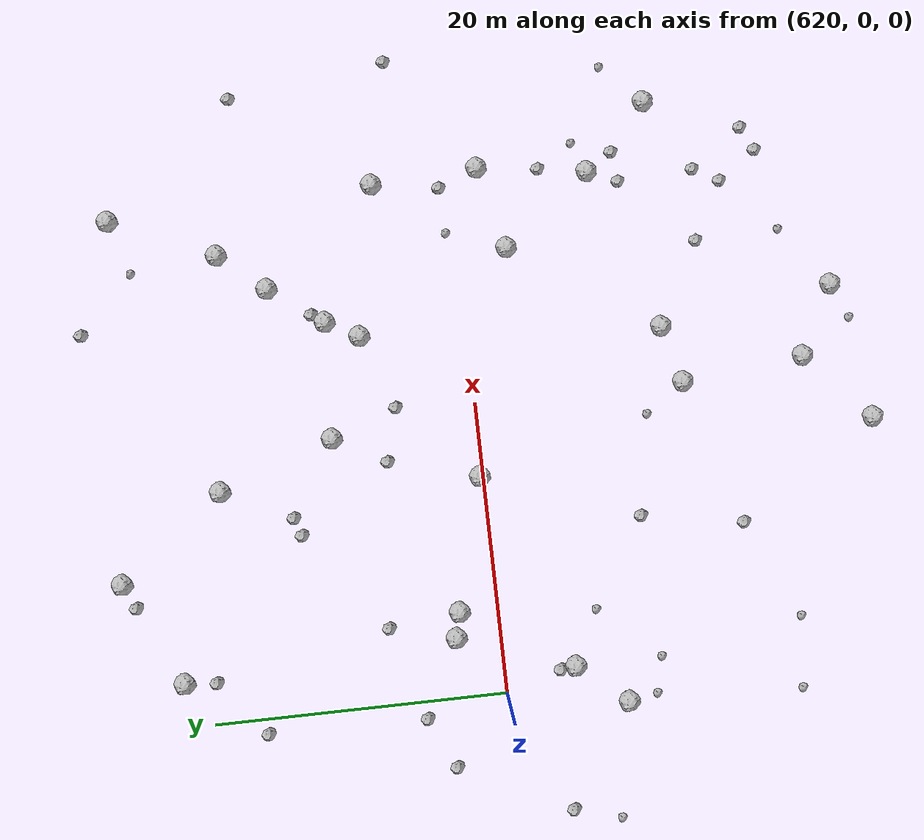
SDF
<sdf version="1.6">
 <world name="default">
  <include><uri>model://sun</uri></include>
  <model name="rock1_16_3">
   <include><uri>model://rock1</uri><pose>659.9883024762049 -14.036544678256051 0.5 0 0 0</pose></include>
  </model>
  <model name="rock1_16_4">
   <include><uri>model://rock1</uri><pose>649.5460760370036 13.605764277387031 0.5 0 0 0</pose></include>
  </model>
  <model name="rock1_16_5">
   <include><uri>model://rock1</uri><pose>621.3596445711155 -4.837862347326485 0.5 0 0 0</pose></include>
  </model>
  <model name="rock1_16_6">
   <include><uri>model://rock1</uri><pose>645.5867533469328 -25.441010353756006 0.5 0 0 0</pose></include>
  </model>
  <model name="rock1_16_7">
   <include><uri>model://rock1</uri><pose>618.6198814093859 -8.171610661820257 0.5 0 0 0</pose></include>
  </model>
  <model name="rock1_16_8">
   <include><uri>model://rock1</uri><pose>630.2043876958043 25.369119706303145 0.5 0 0 0</pose></include>
  </model>
  <model name="rock1_16_9">
   <include><uri>model://rock1</uri><pose>624.1097799089781 3.040425359839773 0.5 0 0 0</pose></include>
  </model>
  <model name="rock1_16_10">
   <include><uri>model://rock1</uri><pose>645.529210320169 7.512759247249804 0.5 0 0 0</pose></include>
  </model>
  <model name="rock1_16_11">
   <include><uri>model://rock1</uri><pose>635.7883659372413 18.132866248797228 0.5 0 0 0</pose></include>
  </model>
  <model name="rock1_16_12">
   <include><uri>model://rock1</uri><pose>638.6197827817781 10.122543811380261 0.5 0 0 0</pose></include>
  </model>
  <model name="rock1_16_13">
   <include><uri>model://rock1</uri><pose>652.2802259749187 16.882235767195667 0.5 0 0 0</pose></include>
  </model>
  <model name="rock1_16_14">
   <include><uri>model://rock1</uri><pose>656.1200226173578 5.621129435042121 0.5 0 0 0</pose></include>
  </model>
  <model name="rock1_16_15">
   <include><uri>model://rock1</uri><pose>640.8081483502336 -22.902479412658963 0.5 0 0 0</pose></include>
  </model>
  <model name="rock1_16_16">
   <include><uri>model://rock1</uri><pose>646.7814136733621 9.814064881975135 0.5 0 0 0</pose></include>
  </model>
  <model name="rock1_16_17">
   <include><uri>model://rock1</uri><pose>634.9099058189811 0.25453572304244076 0.5 0 0 0</pose></include>
  </model>
  <model name="rock1_16_18">
   <include><uri>model://rock1</uri><pose>636.0504193739056 -27.167285303268475 0.5 0 0 0</pose></include>
  </model>
  <model name="rock1_16_19">
   <include><uri>model://rock1</uri><pose>655.526068101933 24.237347074786456 0.5 0 0 0</pose></include>
  </model>
  <model name="rock1_16_20">
   <include><uri>model://rock1</uri><pose>625.8337948642003 2.6404198594670163 0.5 0 0 0</pose></include>
  </model>
  <model name="rock1_16_21">
   <include><uri>model://rock1</uri><pose>639.9135423630046 -14.430712436086994 0.5 0 0 0</pose></include>
  </model>
  <model name="rock1_16_22">
   <include><uri>model://rock1</uri><pose>623.0669293458424 21.71815398341306 0.5 0 0 0</pose></include>
  </model>
  <model name="rock1_16_23">
   <include><uri>model://rock1</uri><pose>650.6421838658612 -3.3153397133116016 0.5 0 0 0</pose></include>
  </model>
  <model name="rock1_16_24">
   <include><uri>model://rock1</uri><pose>656.5166959873243 -1.8481006553777632 0.5 0 0 0</pose></include>
  </model>
  <model name="rock1_16_25">
   <include><uri>model://rock1</uri><pose>643.9278704403101 -13.384505834984783 0.5 0 0 0</pose></include>
  </model>
  <model name="rock1_16_26">
   <include><uri>model://rock1</uri><pose>655.4190576819794 -9.505392543901543 0.5 0 0 0</pose></include>
  </model>
  <model name="rock2_16_0">
   <include><uri>model://rock2</uri><pose>628.4760215061654 24.605082536531434 0.3 0 0 0</pose></include>
  </model>
  <model name="rock2_16_1">
   <include><uri>model://rock2</uri><pose>631.0021726552695 -10.4607367969083 0.3 0 0 0</pose></include>
  </model>
  <model name="rock2_16_2">
   <include><uri>model://rock2</uri><pose>640.2901312991029 5.545139925063253 0.3 0 0 0</pose></include>
  </model>
  <model name="rock2_16_3">
   <include><uri>model://rock2</uri><pose>618.880406990769 5.567966114510206 0.3 0 0 0</pose></include>
  </model>
  <model name="rock2_16_4">
   <include><uri>model://rock2</uri><pose>657.4057562488181 -20.636521032944437 0.3 0 0 0</pose></include>
  </model>
  <model name="rock2_16_5">
   <include><uri>model://rock2</uri><pose>633.4344441122788 13.296880013281424 0.3 0 0 0</pose></include>
  </model>
  <model name="rock2_16_6">
   <include><uri>model://rock2</uri><pose>654.50226619929 -11.63613738729763 0.3 0 0 0</pose></include>
  </model>
  <model name="rock2_16_7">
   <include><uri>model://rock2</uri><pose>622.8480110212497 19.58465029994798 0.3 0 0 0</pose></include>
  </model>
  <model name="rock2_16_8">
   <include><uri>model://rock2</uri><pose>611.7959692010751 -3.618602089165453 0.3 0 0 0</pose></include>
  </model>
  <model name="rock2_16_9">
   <include><uri>model://rock2</uri><pose>663.3926315265272 15.052559006059184 0.3 0 0 0</pose></include>
  </model>
  <model name="rock2_16_10">
   <include><uri>model://rock2</uri><pose>653.7697204077883 -18.7378180639609 0.3 0 0 0</pose></include>
  </model>
  <model name="rock2_16_11">
   <include><uri>model://rock2</uri><pose>629.7983664608764 -17.452283764738223 0.3 0 0 0</pose></include>
  </model>
  <model name="rock2_16_12">
   <include><uri>model://rock2</uri><pose>655.4048097664365 0.9253450125288651 0.3 0 0 0</pose></include>
  </model>
  <model name="rock2_16_13">
   <include><uri>model://rock2</uri><pose>636.602155093336 6.4854668397492645 0.3 0 0 0</pose></include>
  </model>
  <model name="rock2_16_14">
   <include><uri>model://rock2</uri><pose>647.4069359863493 10.733501851134506 0.3 0 0 0</pose></include>
  </model>
  <model name="rock2_16_15">
   <include><uri>model://rock2</uri><pose>615.4440716923747 3.9200630645832533 0.3 0 0 0</pose></include>
  </model>
  <model name="rock2_16_16">
   <include><uri>model://rock2</uri><pose>649.7103024368746 -16.553878869931207 0.3 0 0 0</pose></include>
  </model>
  <model name="rock2_16_17">
   <include><uri>model://rock2</uri><pose>655.7075005649222 -21.44984752473752 0.3 0 0 0</pose></include>
  </model>
  <model name="rock2_16_18">
   <include><uri>model://rock2</uri><pose>632.1826092407059 12.85219728628887 0.3 0 0 0</pose></include>
  </model>
  <model name="rock2_16_19">
   <include><uri>model://rock2</uri><pose>647.677977397898 26.79203263974891 0.3 0 0 0</pose></include>
  </model>
  <model name="rock2_16_20">
   <include><uri>model://rock2</uri><pose>664.8856003869962 3.881731163085256 0.3 0 0 0</pose></include>
  </model>
  <model name="rock2_16_21">
   <include><uri>model://rock2</uri><pose>654.7987446847428 -16.938787521787116 0.3 0 0 0</pose></include>
  </model>
  <model name="rock2_16_22">
   <include><uri>model://rock2</uri><pose>625.22506552445 7.544453444185123 0.3 0 0 0</pose></include>
  </model>
  <model name="rock2_16_23">
   <include><uri>model://rock2</uri><pose>656.643396793293 -11.399747882336705 0.3 0 0 0</pose></include>
  </model>
  <model name="rock2_16_24">
   <include><uri>model://rock2</uri><pose>619.0482407741254 16.40385649668726 0.3 0 0 0</pose></include>
  </model>
  <model name="rock2_16_25">
   <include><uri>model://rock2</uri><pose>621.1842218560977 -3.7738199927573177 0.3 0 0 0</pose></include>
  </model>
  <model name="rock2_16_26">
   <include><uri>model://rock2</uri><pose>656.0067296564 -6.136989804282919 0.3 0 0 0</pose></include>
  </model>
  <model name="rock3_16_0">
   <include><uri>model://rock3</uri><pose>637.9193619676405 -11.752810152221095 0.2 0 0 0</pose></include>
  </model>
  <model name="rock3_16_1">
   <include><uri>model://rock3</uri><pose>624.9579518982887 -6.687772993002703 0.2 0 0 0</pose></include>
  </model>
  <model name="rock3_16_2">
   <include><uri>model://rock3</uri><pose>622.9904143086763 -20.599871951991425 0.2 0 0 0</pose></include>
  </model>
  <model name="rock3_16_3">
   <include><uri>model://rock3</uri><pose>662.8297737218699 -11.326417014280352 0.2 0 0 0</pose></include>
  </model>
  <model name="rock3_16_4">
   <include><uri>model://rock3</uri><pose>618.1601455581825 -20.08966765420471 0.2 0 0 0</pose></include>
  </model>
  <model name="rock3_16_5">
   <include><uri>model://rock3</uri><pose>649.8708127794715 -22.437239238226297 0.2 0 0 0</pose></include>
  </model>
  <model name="rock3_16_6">
   <include><uri>model://rock3</uri><pose>621.3090706268724 -10.778598095458925 0.2 0 0 0</pose></include>
  </model>
  <model name="rock3_16_7">
   <include><uri>model://rock3</uri><pose>657.5714556863862 -8.699584832956983 0.2 0 0 0</pose></include>
  </model>
  <model name="rock3_16_8">
   <include><uri>model://rock3</uri><pose>651.6463000565647 22.98865497295722 0.2 0 0 0</pose></include>
  </model>
  <model name="rock3_16_9">
   <include><uri>model://rock3</uri><pose>643.1109477141306 -26.57262082554104 0.2 0 0 0</pose></include>
  </model>
  <model name="rock3_16_10">
   <include><uri>model://rock3</uri><pose>652.1188489521654 0.75140365126936 0.2 0 0 0</pose></include>
  </model>
  <model name="rock3_16_11">
   <include><uri>model://rock3</uri><pose>655.3511615393281 1.068119283891292 0.2 0 0 0</pose></include>
  </model>
  <model name="rock3_16_12">
   <include><uri>model://rock3</uri><pose>618.8785664045537 -10.186513976116153 0.2 0 0 0</pose></include>
  </model>
  <model name="rock3_16_13">
   <include><uri>model://rock3</uri><pose>610.8848861422247 -6.8293549024878715 0.2 0 0 0</pose></include>
  </model>
 </world>
</sdf>
